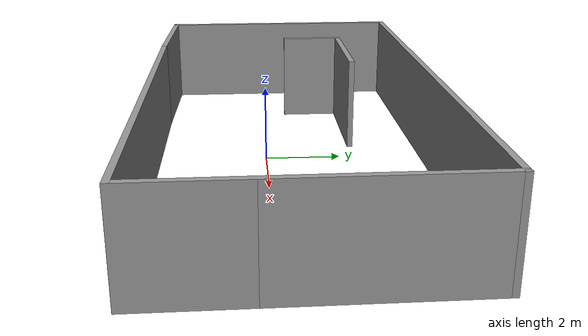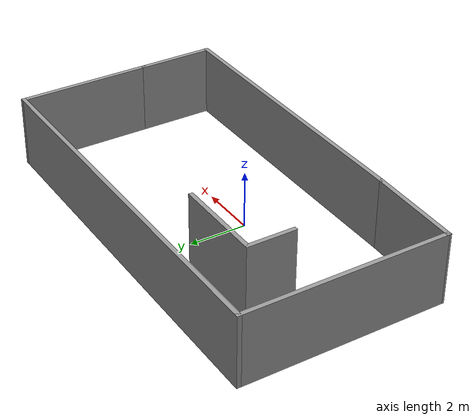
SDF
<?xml version='1.0'?>
<sdf version='1.6'>
  <model name='TestWorld'>
    <pose frame=''>0.388865 0.678865 0 0 -0 0</pose>
    <link name='Wall_1'>
      <collision name='Wall_1_Collision'>
        <geometry>
          <box>
            <size>10.5 0.15 2.5</size>
          </box>
        </geometry>
        <pose frame=''>0 0 1.25 0 -0 0</pose>
      </collision>
      <visual name='Wall_1_Visual'>
        <pose frame=''>0 0 1.25 0 -0 0</pose>
        <geometry>
          <box>
            <size>10.5 0.15 2.5</size>
          </box>
        </geometry>
        <material>
          <script>
            <uri>file://media/materials/scripts/gazebo.material</uri>
            <name>Gazebo/Grey</name>
          </script>
          <ambient>1 1 1 1</ambient>
        </material>
        <meta>
          <layer>0</layer>
        </meta>
      </visual>
      <pose frame=''>1.62614 -3.59886 0 0 -0 0</pose>
    </link>
    <link name='Wall_11'>
      <collision name='Wall_11_Collision'>
        <geometry>
          <box>
            <size>3.25 0.15 2.5</size>
          </box>
        </geometry>
        <pose frame=''>0 0 1.25 0 -0 0</pose>
      </collision>
      <visual name='Wall_11_Visual'>
        <pose frame=''>0 0 1.25 0 -0 0</pose>
        <geometry>
          <box>
            <size>3.25 0.15 2.5</size>
          </box>
        </geometry>
        <material>
          <script>
            <uri>file://media/materials/scripts/gazebo.material</uri>
            <name>Gazebo/Grey</name>
          </script>
          <ambient>1 1 1 1</ambient>
        </material>
        <meta>
          <layer>0</layer>
        </meta>
      </visual>
      <pose frame=''>-2.75836 1.72964 0 0 -0 0</pose>
    </link>
    <link name='Wall_2'>
      <collision name='Wall_2_Collision'>
        <geometry>
          <box>
            <size>2.75 0.15 2.5</size>
          </box>
        </geometry>
        <pose frame=''>0 0 1.25 0 -0 0</pose>
      </collision>
      <visual name='Wall_2_Visual'>
        <pose frame=''>0 0 1.25 0 -0 0</pose>
        <geometry>
          <box>
            <size>2.75 0.15 2.5</size>
          </box>
        </geometry>
        <material>
          <script>
            <uri>file://media/materials/scripts/gazebo.material</uri>
            <name>Gazebo/Grey</name>
          </script>
          <ambient>1 1 1 1</ambient>
        </material>
        <meta>
          <layer>0</layer>
        </meta>
      </visual>
      <pose frame=''>6.80114 -2.29887 0 0 -0 1.5708</pose>
    </link>
    <link name='Wall_4'>
      <collision name='Wall_4_Collision'>
        <geometry>
          <box>
            <size>4.75 0.15 2.5</size>
          </box>
        </geometry>
        <pose frame=''>0 0 1.25 0 -0 0</pose>
      </collision>
      <visual name='Wall_4_Visual'>
        <pose frame=''>0 0 1.25 0 -0 0</pose>
        <geometry>
          <box>
            <size>4.75 0.15 2.5</size>
          </box>
        </geometry>
        <material>
          <script>
            <uri>file://media/materials/scripts/gazebo.material</uri>
            <name>Gazebo/Grey</name>
          </script>
          <ambient>1 1 1 1</ambient>
        </material>
        <meta>
          <layer>0</layer>
        </meta>
      </visual>
      <pose frame=''>6.80114 1.30113 0 0 -0 1.5708</pose>
    </link>
    <link name='Wall_5'>
      <collision name='Wall_5_Collision'>
        <geometry>
          <box>
            <size>13.75 0.15 2.5</size>
          </box>
        </geometry>
        <pose frame=''>0 0 1.25 0 -0 0</pose>
      </collision>
      <visual name='Wall_5_Visual'>
        <pose frame=''>0 0 1.25 0 -0 0</pose>
        <geometry>
          <box>
            <size>13.75 0.15 2.5</size>
          </box>
        </geometry>
        <material>
          <script>
            <uri>file://media/materials/scripts/gazebo.material</uri>
            <name>Gazebo/Grey</name>
          </script>
          <ambient>1 1 1 1</ambient>
        </material>
        <meta>
          <layer>0</layer>
        </meta>
      </visual>
      <pose frame=''>0.001135 3.60114 0 0 -0 3.14159</pose>
    </link>
    <link name='Wall_6'>
      <collision name='Wall_6_Collision'>
        <geometry>
          <box>
            <size>7.25 0.15 2.5</size>
          </box>
        </geometry>
        <pose frame=''>0 0 1.25 0 -0 0</pose>
      </collision>
      <visual name='Wall_6_Visual'>
        <pose frame=''>0 0 1.25 0 -0 0</pose>
        <geometry>
          <box>
            <size>7.25 0.15 2.5</size>
          </box>
        </geometry>
        <material>
          <script>
            <uri>file://media/materials/scripts/gazebo.material</uri>
            <name>Gazebo/Grey</name>
          </script>
          <ambient>1 1 1 1</ambient>
        </material>
        <meta>
          <layer>0</layer>
        </meta>
      </visual>
      <pose frame=''>-6.79887 0.051135 0 0 -0 -1.5708</pose>
    </link>
    <link name='Wall_7'>
      <collision name='Wall_7_Collision'>
        <geometry>
          <box>
            <size>3.40154 0.15 2.5</size>
          </box>
        </geometry>
        <pose frame=''>0 0 1.25 0 -0 0</pose>
      </collision>
      <visual name='Wall_7_Visual'>
        <pose frame=''>0 0 1.25 0 -0 0</pose>
        <geometry>
          <box>
            <size>3.40154 0.15 2.5</size>
          </box>
        </geometry>
        <material>
          <script>
            <uri>file://media/materials/scripts/gazebo.material</uri>
            <name>Gazebo/Grey</name>
          </script>
          <ambient>1 1 1 1</ambient>
        </material>
        <meta>
          <layer>0</layer>
        </meta>
      </visual>
      <pose frame=''>-5.17387 -3.54887 0 0 -0 -0.03076</pose>
    </link>
    <link name='Wall_9'>
      <collision name='Wall_9_Collision'>
        <geometry>
          <box>
            <size>1.75 0.15 2.5</size>
          </box>
        </geometry>
        <pose frame=''>0 0 1.25 0 -0 0</pose>
      </collision>
      <visual name='Wall_9_Visual'>
        <pose frame=''>0 0 1.25 0 -0 0</pose>
        <geometry>
          <box>
            <size>1.75 0.15 2.5</size>
          </box>
        </geometry>
        <material>
          <script>
            <uri>file://media/materials/scripts/gazebo.material</uri>
            <name>Gazebo/Grey</name>
          </script>
          <ambient>1 1 1 1</ambient>
        </material>
        <meta>
          <layer>0</layer>
        </meta>
      </visual>
      <pose frame=''>-4.30837 0.929635 0 0 -0 -1.5708</pose>
    </link>
    <static>1</static>
  </model>
</sdf>
